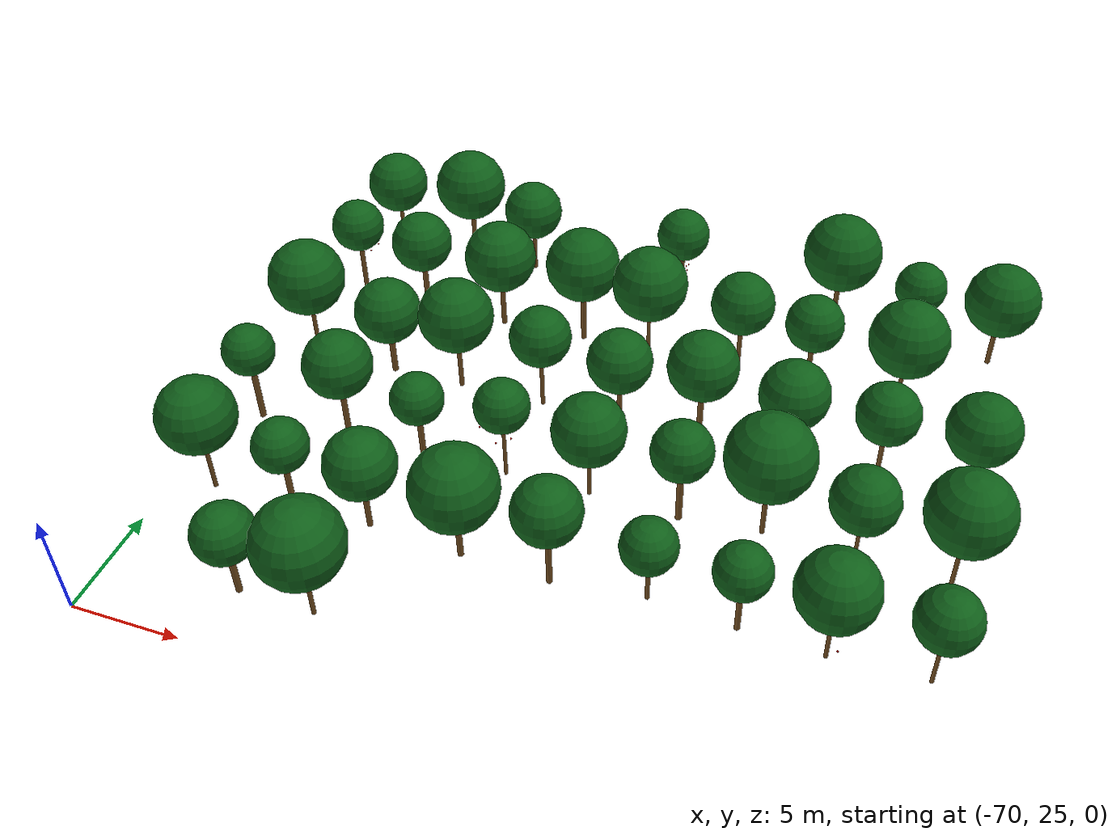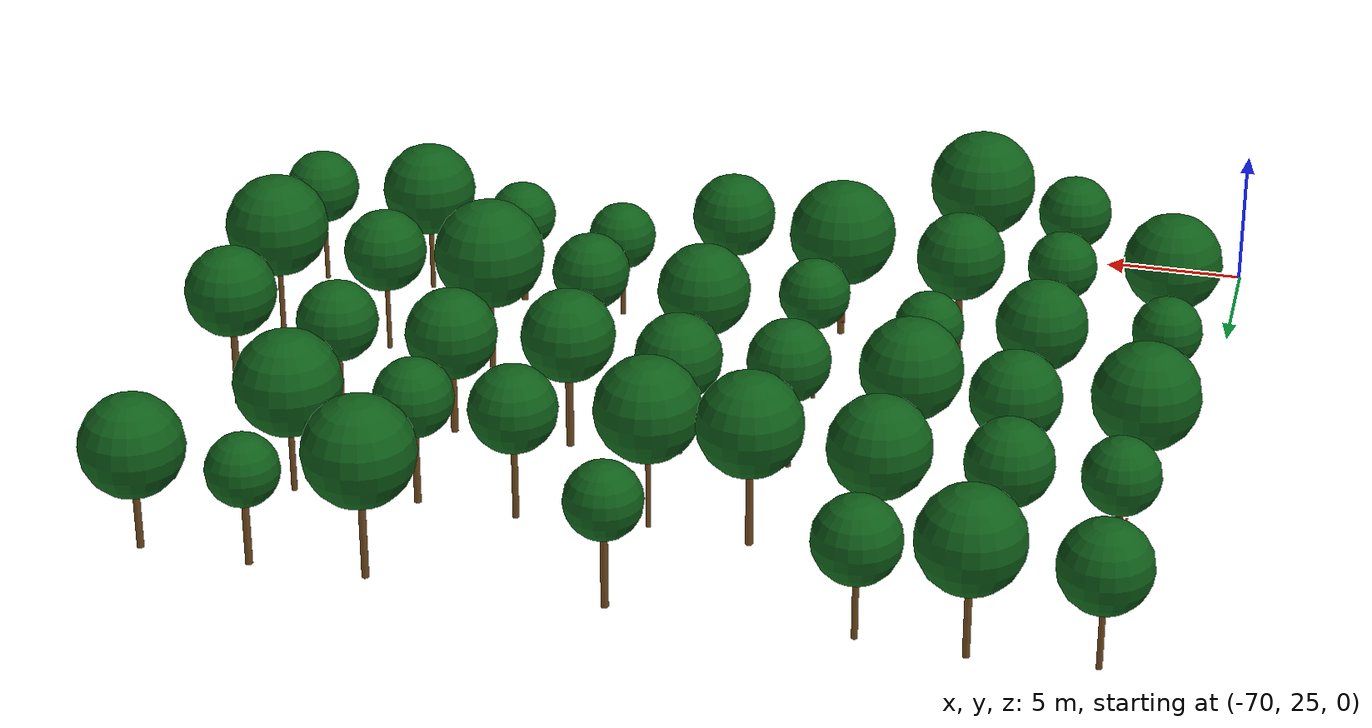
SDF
<sdf version="1.9">
 <world name="cheongsong_orchard">
  <model name="apple_tree_1482">
   <static>true</static>
   <pose>-63.96 27.96 0 0 0 0</pose>
   <link name="link">
    <collision name="trunk_col">
     <pose>0 0 1.09 0 0 0</pose>
     <geometry><cylinder><radius>0.143</radius><length>2.18</length></cylinder></geometry>
    </collision>
    <visual name="trunk_vis">
     <pose>0 0 1.09 0 0 0</pose>
     <geometry><cylinder><radius>0.143</radius><length>2.18</length></cylinder></geometry>
     <material><ambient>0.35 0.22 0.08 1</ambient><diffuse>0.45 0.30 0.12 1</diffuse></material>
    </visual>
    <collision name="canopy_col">
     <pose>0 0 3.53 0 0 0</pose>
     <geometry><sphere><radius>1.35</radius></sphere></geometry>
    </collision>
    <visual name="canopy_vis">
     <pose>0 0 3.53 0 0 0</pose>
     <geometry><sphere><radius>1.35</radius></sphere></geometry>
     <material><ambient>0.04 0.28 0.06 1</ambient><diffuse>0.06 0.38 0.10 1</diffuse></material>
    </visual>
   </link>
  </model>
  <model name="apple_tree_1483">
   <static>true</static>
   <pose>-60.47 27.91 0 0 0 0</pose>
   <link name="link">
    <collision name="trunk_col">
     <pose>0 0 1.20 0 0 0</pose>
     <geometry><cylinder><radius>0.099</radius><length>2.39</length></cylinder></geometry>
    </collision>
    <visual name="trunk_vis">
     <pose>0 0 1.20 0 0 0</pose>
     <geometry><cylinder><radius>0.099</radius><length>2.39</length></cylinder></geometry>
     <material><ambient>0.35 0.22 0.08 1</ambient><diffuse>0.45 0.30 0.12 1</diffuse></material>
    </visual>
    <collision name="canopy_col">
     <pose>0 0 4.33 0 0 0</pose>
     <geometry><sphere><radius>1.94</radius></sphere></geometry>
    </collision>
    <visual name="canopy_vis">
     <pose>0 0 4.33 0 0 0</pose>
     <geometry><sphere><radius>1.94</radius></sphere></geometry>
     <material><ambient>0.04 0.28 0.06 1</ambient><diffuse>0.06 0.38 0.10 1</diffuse></material>
    </visual>
   </link>
  </model>
  <model name="apple_tree_1533">
   <static>true</static>
   <pose>-68.06 32.81 0 0 0 0</pose>
   <link name="link">
    <collision name="trunk_col">
     <pose>0 0 1.30 0 0 0</pose>
     <geometry><cylinder><radius>0.098</radius><length>2.59</length></cylinder></geometry>
    </collision>
    <visual name="trunk_vis">
     <pose>0 0 1.30 0 0 0</pose>
     <geometry><cylinder><radius>0.098</radius><length>2.59</length></cylinder></geometry>
     <material><ambient>0.35 0.22 0.08 1</ambient><diffuse>0.45 0.30 0.12 1</diffuse></material>
    </visual>
    <collision name="canopy_col">
     <pose>0 0 4.35 0 0 0</pose>
     <geometry><sphere><radius>1.76</radius></sphere></geometry>
    </collision>
    <visual name="canopy_vis">
     <pose>0 0 4.35 0 0 0</pose>
     <geometry><sphere><radius>1.76</radius></sphere></geometry>
     <material><ambient>0.04 0.28 0.06 1</ambient><diffuse>0.06 0.38 0.10 1</diffuse></material>
    </visual>
   </link>
  </model>
  <model name="apple_tree_1534">
   <static>true</static>
   <pose>-64.14 32.86 0 0 0 0</pose>
   <link name="link">
    <collision name="trunk_col">
     <pose>0 0 1.26 0 0 0</pose>
     <geometry><cylinder><radius>0.138</radius><length>2.52</length></cylinder></geometry>
    </collision>
    <visual name="trunk_vis">
     <pose>0 0 1.26 0 0 0</pose>
     <geometry><cylinder><radius>0.138</radius><length>2.52</length></cylinder></geometry>
     <material><ambient>0.35 0.22 0.08 1</ambient><diffuse>0.45 0.30 0.12 1</diffuse></material>
    </visual>
    <collision name="canopy_col">
     <pose>0 0 3.77 0 0 0</pose>
     <geometry><sphere><radius>1.25</radius></sphere></geometry>
    </collision>
    <visual name="canopy_vis">
     <pose>0 0 3.77 0 0 0</pose>
     <geometry><sphere><radius>1.25</radius></sphere></geometry>
     <material><ambient>0.04 0.28 0.06 1</ambient><diffuse>0.06 0.38 0.10 1</diffuse></material>
    </visual>
   </link>
  </model>
  <model name="apple_tree_1535">
   <static>true</static>
   <pose>-60.47 32.95 0 0 0 0</pose>
   <link name="link">
    <collision name="trunk_col">
     <pose>0 0 1.09 0 0 0</pose>
     <geometry><cylinder><radius>0.127</radius><length>2.18</length></cylinder></geometry>
    </collision>
    <visual name="trunk_vis">
     <pose>0 0 1.09 0 0 0</pose>
     <geometry><cylinder><radius>0.127</radius><length>2.18</length></cylinder></geometry>
     <material><ambient>0.35 0.22 0.08 1</ambient><diffuse>0.45 0.30 0.12 1</diffuse></material>
    </visual>
    <collision name="canopy_col">
     <pose>0 0 3.78 0 0 0</pose>
     <geometry><sphere><radius>1.60</radius></sphere></geometry>
    </collision>
    <visual name="canopy_vis">
     <pose>0 0 3.78 0 0 0</pose>
     <geometry><sphere><radius>1.60</radius></sphere></geometry>
     <material><ambient>0.04 0.28 0.06 1</ambient><diffuse>0.06 0.38 0.10 1</diffuse></material>
    </visual>
   </link>
  </model>
  <model name="apple_tree_1536">
   <static>true</static>
   <pose>-56.08 32.70 0 0 0 0</pose>
   <link name="link">
    <collision name="trunk_col">
     <pose>0 0 1.09 0 0 0</pose>
     <geometry><cylinder><radius>0.134</radius><length>2.18</length></cylinder></geometry>
    </collision>
    <visual name="trunk_vis">
     <pose>0 0 1.09 0 0 0</pose>
     <geometry><cylinder><radius>0.134</radius><length>2.18</length></cylinder></geometry>
     <material><ambient>0.35 0.22 0.08 1</ambient><diffuse>0.45 0.30 0.12 1</diffuse></material>
    </visual>
    <collision name="canopy_col">
     <pose>0 0 4.11 0 0 0</pose>
     <geometry><sphere><radius>1.93</radius></sphere></geometry>
    </collision>
    <visual name="canopy_vis">
     <pose>0 0 4.11 0 0 0</pose>
     <geometry><sphere><radius>1.93</radius></sphere></geometry>
     <material><ambient>0.04 0.28 0.06 1</ambient><diffuse>0.06 0.38 0.10 1</diffuse></material>
    </visual>
   </link>
  </model>
  <model name="apple_tree_1537">
   <static>true</static>
   <pose>-52.01 32.57 0 0 0 0</pose>
   <link name="link">
    <collision name="trunk_col">
     <pose>0 0 1.40 0 0 0</pose>
     <geometry><cylinder><radius>0.131</radius><length>2.81</length></cylinder></geometry>
    </collision>
    <visual name="trunk_vis">
     <pose>0 0 1.40 0 0 0</pose>
     <geometry><cylinder><radius>0.131</radius><length>2.81</length></cylinder></geometry>
     <material><ambient>0.35 0.22 0.08 1</ambient><diffuse>0.45 0.30 0.12 1</diffuse></material>
    </visual>
    <collision name="canopy_col">
     <pose>0 0 4.32 0 0 0</pose>
     <geometry><sphere><radius>1.51</radius></sphere></geometry>
    </collision>
    <visual name="canopy_vis">
     <pose>0 0 4.32 0 0 0</pose>
     <geometry><sphere><radius>1.51</radius></sphere></geometry>
     <material><ambient>0.04 0.28 0.06 1</ambient><diffuse>0.06 0.38 0.10 1</diffuse></material>
    </visual>
   </link>
  </model>
  <model name="apple_tree_1538">
   <static>true</static>
   <pose>-47.91 33.06 0 0 0 0</pose>
   <link name="link">
    <collision name="trunk_col">
     <pose>0 0 1.01 0 0 0</pose>
     <geometry><cylinder><radius>0.098</radius><length>2.01</length></cylinder></geometry>
    </collision>
    <visual name="trunk_vis">
     <pose>0 0 1.01 0 0 0</pose>
     <geometry><cylinder><radius>0.098</radius><length>2.01</length></cylinder></geometry>
     <material><ambient>0.35 0.22 0.08 1</ambient><diffuse>0.45 0.30 0.12 1</diffuse></material>
    </visual>
    <collision name="canopy_col">
     <pose>0 0 3.24 0 0 0</pose>
     <geometry><sphere><radius>1.23</radius></sphere></geometry>
    </collision>
    <visual name="canopy_vis">
     <pose>0 0 3.24 0 0 0</pose>
     <geometry><sphere><radius>1.23</radius></sphere></geometry>
     <material><ambient>0.04 0.28 0.06 1</ambient><diffuse>0.06 0.38 0.10 1</diffuse></material>
    </visual>
   </link>
  </model>
  <model name="apple_tree_1539">
   <static>true</static>
   <pose>-44.04 32.78 0 0 0 0</pose>
   <link name="link">
    <collision name="trunk_col">
     <pose>0 0 1.16 0 0 0</pose>
     <geometry><cylinder><radius>0.124</radius><length>2.31</length></cylinder></geometry>
    </collision>
    <visual name="trunk_vis">
     <pose>0 0 1.16 0 0 0</pose>
     <geometry><cylinder><radius>0.124</radius><length>2.31</length></cylinder></geometry>
     <material><ambient>0.35 0.22 0.08 1</ambient><diffuse>0.45 0.30 0.12 1</diffuse></material>
    </visual>
    <collision name="canopy_col">
     <pose>0 0 3.54 0 0 0</pose>
     <geometry><sphere><radius>1.22</radius></sphere></geometry>
    </collision>
    <visual name="canopy_vis">
     <pose>0 0 3.54 0 0 0</pose>
     <geometry><sphere><radius>1.22</radius></sphere></geometry>
     <material><ambient>0.04 0.28 0.06 1</ambient><diffuse>0.06 0.38 0.10 1</diffuse></material>
    </visual>
   </link>
  </model>
  <model name="apple_tree_1540">
   <static>true</static>
   <pose>-40.39 32.58 0 0 0 0</pose>
   <link name="link">
    <collision name="trunk_col">
     <pose>0 0 1.19 0 0 0</pose>
     <geometry><cylinder><radius>0.089</radius><length>2.39</length></cylinder></geometry>
    </collision>
    <visual name="trunk_vis">
     <pose>0 0 1.19 0 0 0</pose>
     <geometry><cylinder><radius>0.089</radius><length>2.39</length></cylinder></geometry>
     <material><ambient>0.35 0.22 0.08 1</ambient><diffuse>0.45 0.30 0.12 1</diffuse></material>
    </visual>
    <collision name="canopy_col">
     <pose>0 0 4.10 0 0 0</pose>
     <geometry><sphere><radius>1.71</radius></sphere></geometry>
    </collision>
    <visual name="canopy_vis">
     <pose>0 0 4.10 0 0 0</pose>
     <geometry><sphere><radius>1.71</radius></sphere></geometry>
     <material><ambient>0.04 0.28 0.06 1</ambient><diffuse>0.06 0.38 0.10 1</diffuse></material>
    </visual>
   </link>
  </model>
  <model name="apple_tree_1541">
   <static>true</static>
   <pose>-36.27 32.76 0 0 0 0</pose>
   <link name="link">
    <collision name="trunk_col">
     <pose>0 0 1.24 0 0 0</pose>
     <geometry><cylinder><radius>0.085</radius><length>2.48</length></cylinder></geometry>
    </collision>
    <visual name="trunk_vis">
     <pose>0 0 1.24 0 0 0</pose>
     <geometry><cylinder><radius>0.085</radius><length>2.48</length></cylinder></geometry>
     <material><ambient>0.35 0.22 0.08 1</ambient><diffuse>0.45 0.30 0.12 1</diffuse></material>
    </visual>
    <collision name="canopy_col">
     <pose>0 0 3.83 0 0 0</pose>
     <geometry><sphere><radius>1.35</radius></sphere></geometry>
    </collision>
    <visual name="canopy_vis">
     <pose>0 0 3.83 0 0 0</pose>
     <geometry><sphere><radius>1.35</radius></sphere></geometry>
     <material><ambient>0.04 0.28 0.06 1</ambient><diffuse>0.06 0.38 0.10 1</diffuse></material>
    </visual>
   </link>
  </model>
  <model name="apple_tree_1587">
   <static>true</static>
   <pose>-68.39 37.54 0 0 0 0</pose>
   <link name="link">
    <collision name="trunk_col">
     <pose>0 0 1.43 0 0 0</pose>
     <geometry><cylinder><radius>0.144</radius><length>2.86</length></cylinder></geometry>
    </collision>
    <visual name="trunk_vis">
     <pose>0 0 1.43 0 0 0</pose>
     <geometry><cylinder><radius>0.144</radius><length>2.86</length></cylinder></geometry>
     <material><ambient>0.35 0.22 0.08 1</ambient><diffuse>0.45 0.30 0.12 1</diffuse></material>
    </visual>
    <collision name="canopy_col">
     <pose>0 0 4.08 0 0 0</pose>
     <geometry><sphere><radius>1.22</radius></sphere></geometry>
    </collision>
    <visual name="canopy_vis">
     <pose>0 0 4.08 0 0 0</pose>
     <geometry><sphere><radius>1.22</radius></sphere></geometry>
     <material><ambient>0.04 0.28 0.06 1</ambient><diffuse>0.06 0.38 0.10 1</diffuse></material>
    </visual>
   </link>
  </model>
  <model name="apple_tree_1588">
   <static>true</static>
   <pose>-64.12 38.00 0 0 0 0</pose>
   <link name="link">
    <collision name="trunk_col">
     <pose>0 0 1.22 0 0 0</pose>
     <geometry><cylinder><radius>0.135</radius><length>2.45</length></cylinder></geometry>
    </collision>
    <visual name="trunk_vis">
     <pose>0 0 1.22 0 0 0</pose>
     <geometry><cylinder><radius>0.135</radius><length>2.45</length></cylinder></geometry>
     <material><ambient>0.35 0.22 0.08 1</ambient><diffuse>0.45 0.30 0.12 1</diffuse></material>
    </visual>
    <collision name="canopy_col">
     <pose>0 0 4.05 0 0 0</pose>
     <geometry><sphere><radius>1.61</radius></sphere></geometry>
    </collision>
    <visual name="canopy_vis">
     <pose>0 0 4.05 0 0 0</pose>
     <geometry><sphere><radius>1.61</radius></sphere></geometry>
     <material><ambient>0.04 0.28 0.06 1</ambient><diffuse>0.06 0.38 0.10 1</diffuse></material>
    </visual>
   </link>
  </model>
  <model name="apple_tree_1589">
   <static>true</static>
   <pose>-60.14 37.72 0 0 0 0</pose>
   <link name="link">
    <collision name="trunk_col">
     <pose>0 0 1.08 0 0 0</pose>
     <geometry><cylinder><radius>0.138</radius><length>2.16</length></cylinder></geometry>
    </collision>
    <visual name="trunk_vis">
     <pose>0 0 1.08 0 0 0</pose>
     <geometry><cylinder><radius>0.138</radius><length>2.16</length></cylinder></geometry>
     <material><ambient>0.35 0.22 0.08 1</ambient><diffuse>0.45 0.30 0.12 1</diffuse></material>
    </visual>
    <collision name="canopy_col">
     <pose>0 0 3.39 0 0 0</pose>
     <geometry><sphere><radius>1.23</radius></sphere></geometry>
    </collision>
    <visual name="canopy_vis">
     <pose>0 0 3.39 0 0 0</pose>
     <geometry><sphere><radius>1.23</radius></sphere></geometry>
     <material><ambient>0.04 0.28 0.06 1</ambient><diffuse>0.06 0.38 0.10 1</diffuse></material>
    </visual>
   </link>
  </model>
  <model name="apple_tree_1590">
   <static>true</static>
   <pose>-56.05 37.74 0 0 0 0</pose>
   <link name="link">
    <collision name="trunk_col">
     <pose>0 0 1.46 0 0 0</pose>
     <geometry><cylinder><radius>0.085</radius><length>2.92</length></cylinder></geometry>
    </collision>
    <visual name="trunk_vis">
     <pose>0 0 1.46 0 0 0</pose>
     <geometry><cylinder><radius>0.085</radius><length>2.92</length></cylinder></geometry>
     <material><ambient>0.35 0.22 0.08 1</ambient><diffuse>0.45 0.30 0.12 1</diffuse></material>
    </visual>
    <collision name="canopy_col">
     <pose>0 0 4.18 0 0 0</pose>
     <geometry><sphere><radius>1.26</radius></sphere></geometry>
    </collision>
    <visual name="canopy_vis">
     <pose>0 0 4.18 0 0 0</pose>
     <geometry><sphere><radius>1.26</radius></sphere></geometry>
     <material><ambient>0.04 0.28 0.06 1</ambient><diffuse>0.06 0.38 0.10 1</diffuse></material>
    </visual>
   </link>
  </model>
  <model name="apple_tree_1591">
   <static>true</static>
   <pose>-52.09 37.82 0 0 0 0</pose>
   <link name="link">
    <collision name="trunk_col">
     <pose>0 0 1.13 0 0 0</pose>
     <geometry><cylinder><radius>0.094</radius><length>2.26</length></cylinder></geometry>
    </collision>
    <visual name="trunk_vis">
     <pose>0 0 1.13 0 0 0</pose>
     <geometry><cylinder><radius>0.094</radius><length>2.26</length></cylinder></geometry>
     <material><ambient>0.35 0.22 0.08 1</ambient><diffuse>0.45 0.30 0.12 1</diffuse></material>
    </visual>
    <collision name="canopy_col">
     <pose>0 0 3.92 0 0 0</pose>
     <geometry><sphere><radius>1.66</radius></sphere></geometry>
    </collision>
    <visual name="canopy_vis">
     <pose>0 0 3.92 0 0 0</pose>
     <geometry><sphere><radius>1.66</radius></sphere></geometry>
     <material><ambient>0.04 0.28 0.06 1</ambient><diffuse>0.06 0.38 0.10 1</diffuse></material>
    </visual>
   </link>
  </model>
  <model name="apple_tree_1592">
   <static>true</static>
   <pose>-47.94 37.71 0 0 0 0</pose>
   <link name="link">
    <collision name="trunk_col">
     <pose>0 0 1.36 0 0 0</pose>
     <geometry><cylinder><radius>0.148</radius><length>2.73</length></cylinder></geometry>
    </collision>
    <visual name="trunk_vis">
     <pose>0 0 1.36 0 0 0</pose>
     <geometry><cylinder><radius>0.148</radius><length>2.73</length></cylinder></geometry>
     <material><ambient>0.35 0.22 0.08 1</ambient><diffuse>0.45 0.30 0.12 1</diffuse></material>
    </visual>
    <collision name="canopy_col">
     <pose>0 0 4.11 0 0 0</pose>
     <geometry><sphere><radius>1.38</radius></sphere></geometry>
    </collision>
    <visual name="canopy_vis">
     <pose>0 0 4.11 0 0 0</pose>
     <geometry><sphere><radius>1.38</radius></sphere></geometry>
     <material><ambient>0.04 0.28 0.06 1</ambient><diffuse>0.06 0.38 0.10 1</diffuse></material>
    </visual>
   </link>
  </model>
  <model name="apple_tree_1593">
   <static>true</static>
   <pose>-44.30 38.09 0 0 0 0</pose>
   <link name="link">
    <collision name="trunk_col">
     <pose>0 0 1.31 0 0 0</pose>
     <geometry><cylinder><radius>0.111</radius><length>2.63</length></cylinder></geometry>
    </collision>
    <visual name="trunk_vis">
     <pose>0 0 1.31 0 0 0</pose>
     <geometry><cylinder><radius>0.111</radius><length>2.63</length></cylinder></geometry>
     <material><ambient>0.35 0.22 0.08 1</ambient><diffuse>0.45 0.30 0.12 1</diffuse></material>
    </visual>
    <collision name="canopy_col">
     <pose>0 0 4.59 0 0 0</pose>
     <geometry><sphere><radius>1.97</radius></sphere></geometry>
    </collision>
    <visual name="canopy_vis">
     <pose>0 0 4.59 0 0 0</pose>
     <geometry><sphere><radius>1.97</radius></sphere></geometry>
     <material><ambient>0.04 0.28 0.06 1</ambient><diffuse>0.06 0.38 0.10 1</diffuse></material>
    </visual>
   </link>
  </model>
  <model name="apple_tree_1594">
   <static>true</static>
   <pose>-40.24 37.56 0 0 0 0</pose>
   <link name="link">
    <collision name="trunk_col">
     <pose>0 0 1.25 0 0 0</pose>
     <geometry><cylinder><radius>0.085</radius><length>2.50</length></cylinder></geometry>
    </collision>
    <visual name="trunk_vis">
     <pose>0 0 1.25 0 0 0</pose>
     <geometry><cylinder><radius>0.085</radius><length>2.50</length></cylinder></geometry>
     <material><ambient>0.35 0.22 0.08 1</ambient><diffuse>0.45 0.30 0.12 1</diffuse></material>
    </visual>
    <collision name="canopy_col">
     <pose>0 0 3.99 0 0 0</pose>
     <geometry><sphere><radius>1.49</radius></sphere></geometry>
    </collision>
    <visual name="canopy_vis">
     <pose>0 0 3.99 0 0 0</pose>
     <geometry><sphere><radius>1.49</radius></sphere></geometry>
     <material><ambient>0.04 0.28 0.06 1</ambient><diffuse>0.06 0.38 0.10 1</diffuse></material>
    </visual>
   </link>
  </model>
  <model name="apple_tree_1595">
   <static>true</static>
   <pose>-36.20 37.65 0 0 0 0</pose>
   <link name="link">
    <collision name="trunk_col">
     <pose>0 0 1.36 0 0 0</pose>
     <geometry><cylinder><radius>0.096</radius><length>2.72</length></cylinder></geometry>
    </collision>
    <visual name="trunk_vis">
     <pose>0 0 1.36 0 0 0</pose>
     <geometry><cylinder><radius>0.096</radius><length>2.72</length></cylinder></geometry>
     <material><ambient>0.35 0.22 0.08 1</ambient><diffuse>0.45 0.30 0.12 1</diffuse></material>
    </visual>
    <collision name="canopy_col">
     <pose>0 0 4.58 0 0 0</pose>
     <geometry><sphere><radius>1.86</radius></sphere></geometry>
    </collision>
    <visual name="canopy_vis">
     <pose>0 0 4.58 0 0 0</pose>
     <geometry><sphere><radius>1.86</radius></sphere></geometry>
     <material><ambient>0.04 0.28 0.06 1</ambient><diffuse>0.06 0.38 0.10 1</diffuse></material>
    </visual>
   </link>
  </model>
  <model name="apple_tree_1644">
   <static>true</static>
   <pose>-68.27 42.85 0 0 0 0</pose>
   <link name="link">
    <collision name="trunk_col">
     <pose>0 0 1.29 0 0 0</pose>
     <geometry><cylinder><radius>0.103</radius><length>2.58</length></cylinder></geometry>
    </collision>
    <visual name="trunk_vis">
     <pose>0 0 1.29 0 0 0</pose>
     <geometry><cylinder><radius>0.103</radius><length>2.58</length></cylinder></geometry>
     <material><ambient>0.35 0.22 0.08 1</ambient><diffuse>0.45 0.30 0.12 1</diffuse></material>
    </visual>
    <collision name="canopy_col">
     <pose>0 0 4.42 0 0 0</pose>
     <geometry><sphere><radius>1.85</radius></sphere></geometry>
    </collision>
    <visual name="canopy_vis">
     <pose>0 0 4.42 0 0 0</pose>
     <geometry><sphere><radius>1.85</radius></sphere></geometry>
     <material><ambient>0.04 0.28 0.06 1</ambient><diffuse>0.06 0.38 0.10 1</diffuse></material>
    </visual>
   </link>
  </model>
  <model name="apple_tree_1645">
   <static>true</static>
   <pose>-63.90 42.57 0 0 0 0</pose>
   <link name="link">
    <collision name="trunk_col">
     <pose>0 0 1.06 0 0 0</pose>
     <geometry><cylinder><radius>0.141</radius><length>2.12</length></cylinder></geometry>
    </collision>
    <visual name="trunk_vis">
     <pose>0 0 1.06 0 0 0</pose>
     <geometry><cylinder><radius>0.141</radius><length>2.12</length></cylinder></geometry>
     <material><ambient>0.35 0.22 0.08 1</ambient><diffuse>0.45 0.30 0.12 1</diffuse></material>
    </visual>
    <collision name="canopy_col">
     <pose>0 0 3.71 0 0 0</pose>
     <geometry><sphere><radius>1.59</radius></sphere></geometry>
    </collision>
    <visual name="canopy_vis">
     <pose>0 0 3.71 0 0 0</pose>
     <geometry><sphere><radius>1.59</radius></sphere></geometry>
     <material><ambient>0.04 0.28 0.06 1</ambient><diffuse>0.06 0.38 0.10 1</diffuse></material>
    </visual>
   </link>
  </model>
  <model name="apple_tree_1646">
   <static>true</static>
   <pose>-60.34 42.60 0 0 0 0</pose>
   <link name="link">
    <collision name="trunk_col">
     <pose>0 0 1.28 0 0 0</pose>
     <geometry><cylinder><radius>0.113</radius><length>2.55</length></cylinder></geometry>
    </collision>
    <visual name="trunk_vis">
     <pose>0 0 1.28 0 0 0</pose>
     <geometry><cylinder><radius>0.113</radius><length>2.55</length></cylinder></geometry>
     <material><ambient>0.35 0.22 0.08 1</ambient><diffuse>0.45 0.30 0.12 1</diffuse></material>
    </visual>
    <collision name="canopy_col">
     <pose>0 0 4.33 0 0 0</pose>
     <geometry><sphere><radius>1.78</radius></sphere></geometry>
    </collision>
    <visual name="canopy_vis">
     <pose>0 0 4.33 0 0 0</pose>
     <geometry><sphere><radius>1.78</radius></sphere></geometry>
     <material><ambient>0.04 0.28 0.06 1</ambient><diffuse>0.06 0.38 0.10 1</diffuse></material>
    </visual>
   </link>
  </model>
  <model name="apple_tree_1647">
   <static>true</static>
   <pose>-56.15 42.65 0 0 0 0</pose>
   <link name="link">
    <collision name="trunk_col">
     <pose>0 0 1.35 0 0 0</pose>
     <geometry><cylinder><radius>0.098</radius><length>2.70</length></cylinder></geometry>
    </collision>
    <visual name="trunk_vis">
     <pose>0 0 1.35 0 0 0</pose>
     <geometry><cylinder><radius>0.098</radius><length>2.70</length></cylinder></geometry>
     <material><ambient>0.35 0.22 0.08 1</ambient><diffuse>0.45 0.30 0.12 1</diffuse></material>
    </visual>
    <collision name="canopy_col">
     <pose>0 0 4.15 0 0 0</pose>
     <geometry><sphere><radius>1.45</radius></sphere></geometry>
    </collision>
    <visual name="canopy_vis">
     <pose>0 0 4.15 0 0 0</pose>
     <geometry><sphere><radius>1.45</radius></sphere></geometry>
     <material><ambient>0.04 0.28 0.06 1</ambient><diffuse>0.06 0.38 0.10 1</diffuse></material>
    </visual>
   </link>
  </model>
  <model name="apple_tree_1648">
   <static>true</static>
   <pose>-52.29 42.60 0 0 0 0</pose>
   <link name="link">
    <collision name="trunk_col">
     <pose>0 0 1.13 0 0 0</pose>
     <geometry><cylinder><radius>0.120</radius><length>2.26</length></cylinder></geometry>
    </collision>
    <visual name="trunk_vis">
     <pose>0 0 1.13 0 0 0</pose>
     <geometry><cylinder><radius>0.120</radius><length>2.26</length></cylinder></geometry>
     <material><ambient>0.35 0.22 0.08 1</ambient><diffuse>0.45 0.30 0.12 1</diffuse></material>
    </visual>
    <collision name="canopy_col">
     <pose>0 0 3.79 0 0 0</pose>
     <geometry><sphere><radius>1.53</radius></sphere></geometry>
    </collision>
    <visual name="canopy_vis">
     <pose>0 0 3.79 0 0 0</pose>
     <geometry><sphere><radius>1.53</radius></sphere></geometry>
     <material><ambient>0.04 0.28 0.06 1</ambient><diffuse>0.06 0.38 0.10 1</diffuse></material>
    </visual>
   </link>
  </model>
  <model name="apple_tree_1649">
   <static>true</static>
   <pose>-48.49 42.92 0 0 0 0</pose>
   <link name="link">
    <collision name="trunk_col">
     <pose>0 0 1.34 0 0 0</pose>
     <geometry><cylinder><radius>0.136</radius><length>2.69</length></cylinder></geometry>
    </collision>
    <visual name="trunk_vis">
     <pose>0 0 1.34 0 0 0</pose>
     <geometry><cylinder><radius>0.136</radius><length>2.69</length></cylinder></geometry>
     <material><ambient>0.35 0.22 0.08 1</ambient><diffuse>0.45 0.30 0.12 1</diffuse></material>
    </visual>
    <collision name="canopy_col">
     <pose>0 0 4.32 0 0 0</pose>
     <geometry><sphere><radius>1.64</radius></sphere></geometry>
    </collision>
    <visual name="canopy_vis">
     <pose>0 0 4.32 0 0 0</pose>
     <geometry><sphere><radius>1.64</radius></sphere></geometry>
     <material><ambient>0.04 0.28 0.06 1</ambient><diffuse>0.06 0.38 0.10 1</diffuse></material>
    </visual>
   </link>
  </model>
  <model name="apple_tree_1650">
   <static>true</static>
   <pose>-44.30 42.90 0 0 0 0</pose>
   <link name="link">
    <collision name="trunk_col">
     <pose>0 0 1.13 0 0 0</pose>
     <geometry><cylinder><radius>0.130</radius><length>2.26</length></cylinder></geometry>
    </collision>
    <visual name="trunk_vis">
     <pose>0 0 1.13 0 0 0</pose>
     <geometry><cylinder><radius>0.130</radius><length>2.26</length></cylinder></geometry>
     <material><ambient>0.35 0.22 0.08 1</ambient><diffuse>0.45 0.30 0.12 1</diffuse></material>
    </visual>
    <collision name="canopy_col">
     <pose>0 0 3.88 0 0 0</pose>
     <geometry><sphere><radius>1.61</radius></sphere></geometry>
    </collision>
    <visual name="canopy_vis">
     <pose>0 0 3.88 0 0 0</pose>
     <geometry><sphere><radius>1.61</radius></sphere></geometry>
     <material><ambient>0.04 0.28 0.06 1</ambient><diffuse>0.06 0.38 0.10 1</diffuse></material>
    </visual>
   </link>
  </model>
  <model name="apple_tree_1651">
   <static>true</static>
   <pose>-40.20 42.96 0 0 0 0</pose>
   <link name="link">
    <collision name="trunk_col">
     <pose>0 0 1.24 0 0 0</pose>
     <geometry><cylinder><radius>0.108</radius><length>2.48</length></cylinder></geometry>
    </collision>
    <visual name="trunk_vis">
     <pose>0 0 1.24 0 0 0</pose>
     <geometry><cylinder><radius>0.108</radius><length>2.48</length></cylinder></geometry>
     <material><ambient>0.35 0.22 0.08 1</ambient><diffuse>0.45 0.30 0.12 1</diffuse></material>
    </visual>
    <collision name="canopy_col">
     <pose>0 0 3.92 0 0 0</pose>
     <geometry><sphere><radius>1.44</radius></sphere></geometry>
    </collision>
    <visual name="canopy_vis">
     <pose>0 0 3.92 0 0 0</pose>
     <geometry><sphere><radius>1.44</radius></sphere></geometry>
     <material><ambient>0.04 0.28 0.06 1</ambient><diffuse>0.06 0.38 0.10 1</diffuse></material>
    </visual>
   </link>
  </model>
  <model name="apple_tree_1652">
   <static>true</static>
   <pose>-36.23 42.69 0 0 0 0</pose>
   <link name="link">
    <collision name="trunk_col">
     <pose>0 0 1.42 0 0 0</pose>
     <geometry><cylinder><radius>0.127</radius><length>2.85</length></cylinder></geometry>
    </collision>
    <visual name="trunk_vis">
     <pose>0 0 1.42 0 0 0</pose>
     <geometry><cylinder><radius>0.127</radius><length>2.85</length></cylinder></geometry>
     <material><ambient>0.35 0.22 0.08 1</ambient><diffuse>0.45 0.30 0.12 1</diffuse></material>
    </visual>
    <collision name="canopy_col">
     <pose>0 0 4.47 0 0 0</pose>
     <geometry><sphere><radius>1.62</radius></sphere></geometry>
    </collision>
    <visual name="canopy_vis">
     <pose>0 0 4.47 0 0 0</pose>
     <geometry><sphere><radius>1.62</radius></sphere></geometry>
     <material><ambient>0.04 0.28 0.06 1</ambient><diffuse>0.06 0.38 0.10 1</diffuse></material>
    </visual>
   </link>
  </model>
  <model name="apple_tree_1700">
   <static>true</static>
   <pose>-68.07 47.82 0 0 0 0</pose>
   <link name="link">
    <collision name="trunk_col">
     <pose>0 0 1.44 0 0 0</pose>
     <geometry><cylinder><radius>0.120</radius><length>2.88</length></cylinder></geometry>
    </collision>
    <visual name="trunk_vis">
     <pose>0 0 1.44 0 0 0</pose>
     <geometry><cylinder><radius>0.120</radius><length>2.88</length></cylinder></geometry>
     <material><ambient>0.35 0.22 0.08 1</ambient><diffuse>0.45 0.30 0.12 1</diffuse></material>
    </visual>
    <collision name="canopy_col">
     <pose>0 0 4.19 0 0 0</pose>
     <geometry><sphere><radius>1.31</radius></sphere></geometry>
    </collision>
    <visual name="canopy_vis">
     <pose>0 0 4.19 0 0 0</pose>
     <geometry><sphere><radius>1.31</radius></sphere></geometry>
     <material><ambient>0.04 0.28 0.06 1</ambient><diffuse>0.06 0.38 0.10 1</diffuse></material>
    </visual>
   </link>
  </model>
  <model name="apple_tree_1701">
   <static>true</static>
   <pose>-64.44 47.66 0 0 0 0</pose>
   <link name="link">
    <collision name="trunk_col">
     <pose>0 0 1.31 0 0 0</pose>
     <geometry><cylinder><radius>0.139</radius><length>2.62</length></cylinder></geometry>
    </collision>
    <visual name="trunk_vis">
     <pose>0 0 1.31 0 0 0</pose>
     <geometry><cylinder><radius>0.139</radius><length>2.62</length></cylinder></geometry>
     <material><ambient>0.35 0.22 0.08 1</ambient><diffuse>0.45 0.30 0.12 1</diffuse></material>
    </visual>
    <collision name="canopy_col">
     <pose>0 0 4.12 0 0 0</pose>
     <geometry><sphere><radius>1.50</radius></sphere></geometry>
    </collision>
    <visual name="canopy_vis">
     <pose>0 0 4.12 0 0 0</pose>
     <geometry><sphere><radius>1.50</radius></sphere></geometry>
     <material><ambient>0.04 0.28 0.06 1</ambient><diffuse>0.06 0.38 0.10 1</diffuse></material>
    </visual>
   </link>
  </model>
  <model name="apple_tree_1702">
   <static>true</static>
   <pose>-60.20 47.72 0 0 0 0</pose>
   <link name="link">
    <collision name="trunk_col">
     <pose>0 0 1.20 0 0 0</pose>
     <geometry><cylinder><radius>0.128</radius><length>2.41</length></cylinder></geometry>
    </collision>
    <visual name="trunk_vis">
     <pose>0 0 1.20 0 0 0</pose>
     <geometry><cylinder><radius>0.128</radius><length>2.41</length></cylinder></geometry>
     <material><ambient>0.35 0.22 0.08 1</ambient><diffuse>0.45 0.30 0.12 1</diffuse></material>
    </visual>
    <collision name="canopy_col">
     <pose>0 0 4.17 0 0 0</pose>
     <geometry><sphere><radius>1.76</radius></sphere></geometry>
    </collision>
    <visual name="canopy_vis">
     <pose>0 0 4.17 0 0 0</pose>
     <geometry><sphere><radius>1.76</radius></sphere></geometry>
     <material><ambient>0.04 0.28 0.06 1</ambient><diffuse>0.06 0.38 0.10 1</diffuse></material>
    </visual>
   </link>
  </model>
  <model name="apple_tree_1703">
   <static>true</static>
   <pose>-55.94 47.91 0 0 0 0</pose>
   <link name="link">
    <collision name="trunk_col">
     <pose>0 0 1.38 0 0 0</pose>
     <geometry><cylinder><radius>0.129</radius><length>2.76</length></cylinder></geometry>
    </collision>
    <visual name="trunk_vis">
     <pose>0 0 1.38 0 0 0</pose>
     <geometry><cylinder><radius>0.129</radius><length>2.76</length></cylinder></geometry>
     <material><ambient>0.35 0.22 0.08 1</ambient><diffuse>0.45 0.30 0.12 1</diffuse></material>
    </visual>
    <collision name="canopy_col">
     <pose>0 0 4.57 0 0 0</pose>
     <geometry><sphere><radius>1.81</radius></sphere></geometry>
    </collision>
    <visual name="canopy_vis">
     <pose>0 0 4.57 0 0 0</pose>
     <geometry><sphere><radius>1.81</radius></sphere></geometry>
     <material><ambient>0.04 0.28 0.06 1</ambient><diffuse>0.06 0.38 0.10 1</diffuse></material>
    </visual>
   </link>
  </model>
  <model name="apple_tree_1704">
   <static>true</static>
   <pose>-52.43 47.59 0 0 0 0</pose>
   <link name="link">
    <collision name="trunk_col">
     <pose>0 0 1.35 0 0 0</pose>
     <geometry><cylinder><radius>0.089</radius><length>2.69</length></cylinder></geometry>
    </collision>
    <visual name="trunk_vis">
     <pose>0 0 1.35 0 0 0</pose>
     <geometry><cylinder><radius>0.089</radius><length>2.69</length></cylinder></geometry>
     <material><ambient>0.35 0.22 0.08 1</ambient><diffuse>0.45 0.30 0.12 1</diffuse></material>
    </visual>
    <collision name="canopy_col">
     <pose>0 0 4.51 0 0 0</pose>
     <geometry><sphere><radius>1.82</radius></sphere></geometry>
    </collision>
    <visual name="canopy_vis">
     <pose>0 0 4.51 0 0 0</pose>
     <geometry><sphere><radius>1.82</radius></sphere></geometry>
     <material><ambient>0.04 0.28 0.06 1</ambient><diffuse>0.06 0.38 0.10 1</diffuse></material>
    </visual>
   </link>
  </model>
  <model name="apple_tree_1705">
   <static>true</static>
   <pose>-47.95 48.00 0 0 0 0</pose>
   <link name="link">
    <collision name="trunk_col">
     <pose>0 0 1.33 0 0 0</pose>
     <geometry><cylinder><radius>0.110</radius><length>2.66</length></cylinder></geometry>
    </collision>
    <visual name="trunk_vis">
     <pose>0 0 1.33 0 0 0</pose>
     <geometry><cylinder><radius>0.110</radius><length>2.66</length></cylinder></geometry>
     <material><ambient>0.35 0.22 0.08 1</ambient><diffuse>0.45 0.30 0.12 1</diffuse></material>
    </visual>
    <collision name="canopy_col">
     <pose>0 0 4.18 0 0 0</pose>
     <geometry><sphere><radius>1.52</radius></sphere></geometry>
    </collision>
    <visual name="canopy_vis">
     <pose>0 0 4.18 0 0 0</pose>
     <geometry><sphere><radius>1.52</radius></sphere></geometry>
     <material><ambient>0.04 0.28 0.06 1</ambient><diffuse>0.06 0.38 0.10 1</diffuse></material>
    </visual>
   </link>
  </model>
  <model name="apple_tree_1706">
   <static>true</static>
   <pose>-44.45 47.80 0 0 0 0</pose>
   <link name="link">
    <collision name="trunk_col">
     <pose>0 0 1.34 0 0 0</pose>
     <geometry><cylinder><radius>0.121</radius><length>2.67</length></cylinder></geometry>
    </collision>
    <visual name="trunk_vis">
     <pose>0 0 1.34 0 0 0</pose>
     <geometry><cylinder><radius>0.121</radius><length>2.67</length></cylinder></geometry>
     <material><ambient>0.35 0.22 0.08 1</ambient><diffuse>0.45 0.30 0.12 1</diffuse></material>
    </visual>
    <collision name="canopy_col">
     <pose>0 0 4.05 0 0 0</pose>
     <geometry><sphere><radius>1.38</radius></sphere></geometry>
    </collision>
    <visual name="canopy_vis">
     <pose>0 0 4.05 0 0 0</pose>
     <geometry><sphere><radius>1.38</radius></sphere></geometry>
     <material><ambient>0.04 0.28 0.06 1</ambient><diffuse>0.06 0.38 0.10 1</diffuse></material>
    </visual>
   </link>
  </model>
  <model name="apple_tree_1707">
   <static>true</static>
   <pose>-40.12 47.97 0 0 0 0</pose>
   <link name="link">
    <collision name="trunk_col">
     <pose>0 0 1.15 0 0 0</pose>
     <geometry><cylinder><radius>0.104</radius><length>2.31</length></cylinder></geometry>
    </collision>
    <visual name="trunk_vis">
     <pose>0 0 1.15 0 0 0</pose>
     <geometry><cylinder><radius>0.104</radius><length>2.31</length></cylinder></geometry>
     <material><ambient>0.35 0.22 0.08 1</ambient><diffuse>0.45 0.30 0.12 1</diffuse></material>
    </visual>
    <collision name="canopy_col">
     <pose>0 0 4.17 0 0 0</pose>
     <geometry><sphere><radius>1.86</radius></sphere></geometry>
    </collision>
    <visual name="canopy_vis">
     <pose>0 0 4.17 0 0 0</pose>
     <geometry><sphere><radius>1.86</radius></sphere></geometry>
     <material><ambient>0.04 0.28 0.06 1</ambient><diffuse>0.06 0.38 0.10 1</diffuse></material>
    </visual>
   </link>
  </model>
  <model name="apple_tree_1756">
   <static>true</static>
   <pose>-68.19 52.66 0 0 0 0</pose>
   <link name="link">
    <collision name="trunk_col">
     <pose>0 0 1.10 0 0 0</pose>
     <geometry><cylinder><radius>0.101</radius><length>2.20</length></cylinder></geometry>
    </collision>
    <visual name="trunk_vis">
     <pose>0 0 1.10 0 0 0</pose>
     <geometry><cylinder><radius>0.101</radius><length>2.20</length></cylinder></geometry>
     <material><ambient>0.35 0.22 0.08 1</ambient><diffuse>0.45 0.30 0.12 1</diffuse></material>
    </visual>
    <collision name="canopy_col">
     <pose>0 0 3.76 0 0 0</pose>
     <geometry><sphere><radius>1.56</radius></sphere></geometry>
    </collision>
    <visual name="canopy_vis">
     <pose>0 0 3.76 0 0 0</pose>
     <geometry><sphere><radius>1.56</radius></sphere></geometry>
     <material><ambient>0.04 0.28 0.06 1</ambient><diffuse>0.06 0.38 0.10 1</diffuse></material>
    </visual>
   </link>
  </model>
  <model name="apple_tree_1757">
   <static>true</static>
   <pose>-64.02 52.93 0 0 0 0</pose>
   <link name="link">
    <collision name="trunk_col">
     <pose>0 0 1.25 0 0 0</pose>
     <geometry><cylinder><radius>0.122</radius><length>2.50</length></cylinder></geometry>
    </collision>
    <visual name="trunk_vis">
     <pose>0 0 1.25 0 0 0</pose>
     <geometry><cylinder><radius>0.122</radius><length>2.50</length></cylinder></geometry>
     <material><ambient>0.35 0.22 0.08 1</ambient><diffuse>0.45 0.30 0.12 1</diffuse></material>
    </visual>
    <collision name="canopy_col">
     <pose>0 0 4.31 0 0 0</pose>
     <geometry><sphere><radius>1.81</radius></sphere></geometry>
    </collision>
    <visual name="canopy_vis">
     <pose>0 0 4.31 0 0 0</pose>
     <geometry><sphere><radius>1.81</radius></sphere></geometry>
     <material><ambient>0.04 0.28 0.06 1</ambient><diffuse>0.06 0.38 0.10 1</diffuse></material>
    </visual>
   </link>
  </model>
  <model name="apple_tree_1758">
   <static>true</static>
   <pose>-60.40 52.68 0 0 0 0</pose>
   <link name="link">
    <collision name="trunk_col">
     <pose>0 0 1.08 0 0 0</pose>
     <geometry><cylinder><radius>0.106</radius><length>2.17</length></cylinder></geometry>
    </collision>
    <visual name="trunk_vis">
     <pose>0 0 1.08 0 0 0</pose>
     <geometry><cylinder><radius>0.106</radius><length>2.17</length></cylinder></geometry>
     <material><ambient>0.35 0.22 0.08 1</ambient><diffuse>0.45 0.30 0.12 1</diffuse></material>
    </visual>
    <collision name="canopy_col">
     <pose>0 0 3.66 0 0 0</pose>
     <geometry><sphere><radius>1.49</radius></sphere></geometry>
    </collision>
    <visual name="canopy_vis">
     <pose>0 0 3.66 0 0 0</pose>
     <geometry><sphere><radius>1.49</radius></sphere></geometry>
     <material><ambient>0.04 0.28 0.06 1</ambient><diffuse>0.06 0.38 0.10 1</diffuse></material>
    </visual>
   </link>
  </model>
  <model name="apple_tree_1760">
   <static>true</static>
   <pose>-52.23 52.69 0 0 0 0</pose>
   <link name="link">
    <collision name="trunk_col">
     <pose>0 0 1.34 0 0 0</pose>
     <geometry><cylinder><radius>0.129</radius><length>2.68</length></cylinder></geometry>
    </collision>
    <visual name="trunk_vis">
     <pose>0 0 1.34 0 0 0</pose>
     <geometry><cylinder><radius>0.129</radius><length>2.68</length></cylinder></geometry>
     <material><ambient>0.35 0.22 0.08 1</ambient><diffuse>0.45 0.30 0.12 1</diffuse></material>
    </visual>
    <collision name="canopy_col">
     <pose>0 0 3.99 0 0 0</pose>
     <geometry><sphere><radius>1.32</radius></sphere></geometry>
    </collision>
    <visual name="canopy_vis">
     <pose>0 0 3.99 0 0 0</pose>
     <geometry><sphere><radius>1.32</radius></sphere></geometry>
     <material><ambient>0.04 0.28 0.06 1</ambient><diffuse>0.06 0.38 0.10 1</diffuse></material>
    </visual>
   </link>
  </model>
  <model name="apple_tree_1762">
   <static>true</static>
   <pose>-44.18 52.74 0 0 0 0</pose>
   <link name="link">
    <collision name="trunk_col">
     <pose>0 0 1.43 0 0 0</pose>
     <geometry><cylinder><radius>0.125</radius><length>2.85</length></cylinder></geometry>
    </collision>
    <visual name="trunk_vis">
     <pose>0 0 1.43 0 0 0</pose>
     <geometry><cylinder><radius>0.125</radius><length>2.85</length></cylinder></geometry>
     <material><ambient>0.35 0.22 0.08 1</ambient><diffuse>0.45 0.30 0.12 1</diffuse></material>
    </visual>
    <collision name="canopy_col">
     <pose>0 0 4.75 0 0 0</pose>
     <geometry><sphere><radius>1.90</radius></sphere></geometry>
    </collision>
    <visual name="canopy_vis">
     <pose>0 0 4.75 0 0 0</pose>
     <geometry><sphere><radius>1.90</radius></sphere></geometry>
     <material><ambient>0.04 0.28 0.06 1</ambient><diffuse>0.06 0.38 0.10 1</diffuse></material>
    </visual>
   </link>
  </model>
  <model name="apple_tree_1763">
   <static>true</static>
   <pose>-40.20 52.80 0 0 0 0</pose>
   <link name="link">
    <collision name="trunk_col">
     <pose>0 0 1.16 0 0 0</pose>
     <geometry><cylinder><radius>0.127</radius><length>2.32</length></cylinder></geometry>
    </collision>
    <visual name="trunk_vis">
     <pose>0 0 1.16 0 0 0</pose>
     <geometry><cylinder><radius>0.127</radius><length>2.32</length></cylinder></geometry>
     <material><ambient>0.35 0.22 0.08 1</ambient><diffuse>0.45 0.30 0.12 1</diffuse></material>
    </visual>
    <collision name="canopy_col">
     <pose>0 0 3.57 0 0 0</pose>
     <geometry><sphere><radius>1.25</radius></sphere></geometry>
    </collision>
    <visual name="canopy_vis">
     <pose>0 0 3.57 0 0 0</pose>
     <geometry><sphere><radius>1.25</radius></sphere></geometry>
     <material><ambient>0.04 0.28 0.06 1</ambient><diffuse>0.06 0.38 0.10 1</diffuse></material>
    </visual>
   </link>
  </model>
  <model name="apple_tree_1764">
   <static>true</static>
   <pose>-36.35 52.63 0 0 0 0</pose>
   <link name="link">
    <collision name="trunk_col">
     <pose>0 0 1.05 0 0 0</pose>
     <geometry><cylinder><radius>0.123</radius><length>2.10</length></cylinder></geometry>
    </collision>
    <visual name="trunk_vis">
     <pose>0 0 1.05 0 0 0</pose>
     <geometry><cylinder><radius>0.123</radius><length>2.10</length></cylinder></geometry>
     <material><ambient>0.35 0.22 0.08 1</ambient><diffuse>0.45 0.30 0.12 1</diffuse></material>
    </visual>
    <collision name="canopy_col">
     <pose>0 0 3.88 0 0 0</pose>
     <geometry><sphere><radius>1.78</radius></sphere></geometry>
    </collision>
    <visual name="canopy_vis">
     <pose>0 0 3.88 0 0 0</pose>
     <geometry><sphere><radius>1.78</radius></sphere></geometry>
     <material><ambient>0.04 0.28 0.06 1</ambient><diffuse>0.06 0.38 0.10 1</diffuse></material>
    </visual>
   </link>
  </model>
  <model name="apple_1540_0">
   <static>true</static>
   <pose>-40.21 33.12 2.23 0 0 0</pose>
   <link name="link">
    <visual name="visual">
     <geometry><sphere><radius>0.04</radius></sphere></geometry>
     <material><ambient>0.7 0.05 0.02 1</ambient><diffuse>0.9 0.10 0.05 1</diffuse></material>
    </visual>
   </link>
  </model>
  <model name="apple_1540_1">
   <static>true</static>
   <pose>-40.50 33.08 1.90 0 0 0</pose>
   <link name="link">
    <visual name="visual">
     <geometry><sphere><radius>0.04</radius></sphere></geometry>
     <material><ambient>0.7 0.05 0.02 1</ambient><diffuse>0.9 0.10 0.05 1</diffuse></material>
    </visual>
   </link>
  </model>
  <model name="apple_1540_2">
   <static>true</static>
   <pose>-39.93 31.50 1.93 0 0 0</pose>
   <link name="link">
    <visual name="visual">
     <geometry><sphere><radius>0.04</radius></sphere></geometry>
     <material><ambient>0.7 0.05 0.02 1</ambient><diffuse>0.9 0.10 0.05 1</diffuse></material>
    </visual>
   </link>
  </model>
  <model name="apple_1540_3">
   <static>true</static>
   <pose>-41.23 32.10 2.50 0 0 0</pose>
   <link name="link">
    <visual name="visual">
     <geometry><sphere><radius>0.04</radius></sphere></geometry>
     <material><ambient>0.7 0.05 0.02 1</ambient><diffuse>0.9 0.10 0.05 1</diffuse></material>
    </visual>
   </link>
  </model>
  <model name="apple_1540_4">
   <static>true</static>
   <pose>-40.05 33.69 2.77 0 0 0</pose>
   <link name="link">
    <visual name="visual">
     <geometry><sphere><radius>0.04</radius></sphere></geometry>
     <material><ambient>0.7 0.05 0.02 1</ambient><diffuse>0.9 0.10 0.05 1</diffuse></material>
    </visual>
   </link>
  </model>
  <model name="apple_1590_0">
   <static>true</static>
   <pose>-56.98 37.34 2.97 0 0 0</pose>
   <link name="link">
    <visual name="visual">
     <geometry><sphere><radius>0.04</radius></sphere></geometry>
     <material><ambient>0.7 0.05 0.02 1</ambient><diffuse>0.9 0.10 0.05 1</diffuse></material>
    </visual>
   </link>
  </model>
  <model name="apple_1590_1">
   <static>true</static>
   <pose>-56.12 37.06 2.53 0 0 0</pose>
   <link name="link">
    <visual name="visual">
     <geometry><sphere><radius>0.04</radius></sphere></geometry>
     <material><ambient>0.7 0.05 0.02 1</ambient><diffuse>0.9 0.10 0.05 1</diffuse></material>
    </visual>
   </link>
  </model>
  <model name="apple_1590_2">
   <static>true</static>
   <pose>-55.43 37.14 2.95 0 0 0</pose>
   <link name="link">
    <visual name="visual">
     <geometry><sphere><radius>0.04</radius></sphere></geometry>
     <material><ambient>0.7 0.05 0.02 1</ambient><diffuse>0.9 0.10 0.05 1</diffuse></material>
    </visual>
   </link>
  </model>
  <model name="apple_1650_0">
   <static>true</static>
   <pose>-43.92 42.88 1.74 0 0 0</pose>
   <link name="link">
    <visual name="visual">
     <geometry><sphere><radius>0.04</radius></sphere></geometry>
     <material><ambient>0.7 0.05 0.02 1</ambient><diffuse>0.9 0.10 0.05 1</diffuse></material>
    </visual>
   </link>
  </model>
  <model name="apple_1650_1">
   <static>true</static>
   <pose>-44.51 42.26 2.47 0 0 0</pose>
   <link name="link">
    <visual name="visual">
     <geometry><sphere><radius>0.04</radius></sphere></geometry>
     <material><ambient>0.7 0.05 0.02 1</ambient><diffuse>0.9 0.10 0.05 1</diffuse></material>
    </visual>
   </link>
  </model>
  <model name="apple_1650_2">
   <static>true</static>
   <pose>-43.76 43.79 1.81 0 0 0</pose>
   <link name="link">
    <visual name="visual">
     <geometry><sphere><radius>0.04</radius></sphere></geometry>
     <material><ambient>0.7 0.05 0.02 1</ambient><diffuse>0.9 0.10 0.05 1</diffuse></material>
    </visual>
   </link>
  </model>
  <model name="apple_1650_3">
   <static>true</static>
   <pose>-45.47 43.38 1.66 0 0 0</pose>
   <link name="link">
    <visual name="visual">
     <geometry><sphere><radius>0.04</radius></sphere></geometry>
     <material><ambient>0.7 0.05 0.02 1</ambient><diffuse>0.9 0.10 0.05 1</diffuse></material>
    </visual>
   </link>
  </model>
  <model name="apple_1650_4">
   <static>true</static>
   <pose>-44.72 43.12 2.53 0 0 0</pose>
   <link name="link">
    <visual name="visual">
     <geometry><sphere><radius>0.04</radius></sphere></geometry>
     <material><ambient>0.7 0.05 0.02 1</ambient><diffuse>0.9 0.10 0.05 1</diffuse></material>
    </visual>
   </link>
  </model>
  <model name="apple_1700_1">
   <static>true</static>
   <pose>-68.39 48.64 3.09 0 0 0</pose>
   <link name="link">
    <visual name="visual">
     <geometry><sphere><radius>0.04</radius></sphere></geometry>
     <material><ambient>0.7 0.05 0.02 1</ambient><diffuse>0.9 0.10 0.05 1</diffuse></material>
    </visual>
   </link>
  </model>
  <model name="apple_1700_3">
   <static>true</static>
   <pose>-67.49 48.59 2.63 0 0 0</pose>
   <link name="link">
    <visual name="visual">
     <geometry><sphere><radius>0.04</radius></sphere></geometry>
     <material><ambient>0.7 0.05 0.02 1</ambient><diffuse>0.9 0.10 0.05 1</diffuse></material>
    </visual>
   </link>
  </model>
  <model name="apple_1700_4">
   <static>true</static>
   <pose>-67.65 48.06 2.54 0 0 0</pose>
   <link name="link">
    <visual name="visual">
     <geometry><sphere><radius>0.04</radius></sphere></geometry>
     <material><ambient>0.7 0.05 0.02 1</ambient><diffuse>0.9 0.10 0.05 1</diffuse></material>
    </visual>
   </link>
  </model>
  <model name="apple_1760_0">
   <static>true</static>
   <pose>-51.91 52.31 2.36 0 0 0</pose>
   <link name="link">
    <visual name="visual">
     <geometry><sphere><radius>0.04</radius></sphere></geometry>
     <material><ambient>0.7 0.05 0.02 1</ambient><diffuse>0.9 0.10 0.05 1</diffuse></material>
    </visual>
   </link>
  </model>
  <model name="apple_1760_1">
   <static>true</static>
   <pose>-51.79 52.09 2.29 0 0 0</pose>
   <link name="link">
    <visual name="visual">
     <geometry><sphere><radius>0.04</radius></sphere></geometry>
     <material><ambient>0.7 0.05 0.02 1</ambient><diffuse>0.9 0.10 0.05 1</diffuse></material>
    </visual>
   </link>
  </model>
  <model name="apple_1760_2">
   <static>true</static>
   <pose>-51.65 52.73 2.62 0 0 0</pose>
   <link name="link">
    <visual name="visual">
     <geometry><sphere><radius>0.04</radius></sphere></geometry>
     <material><ambient>0.7 0.05 0.02 1</ambient><diffuse>0.9 0.10 0.05 1</diffuse></material>
    </visual>
   </link>
  </model>
  <model name="apple_1760_3">
   <static>true</static>
   <pose>-51.75 52.19 2.59 0 0 0</pose>
   <link name="link">
    <visual name="visual">
     <geometry><sphere><radius>0.04</radius></sphere></geometry>
     <material><ambient>0.7 0.05 0.02 1</ambient><diffuse>0.9 0.10 0.05 1</diffuse></material>
    </visual>
   </link>
  </model>
 </world>
</sdf>
